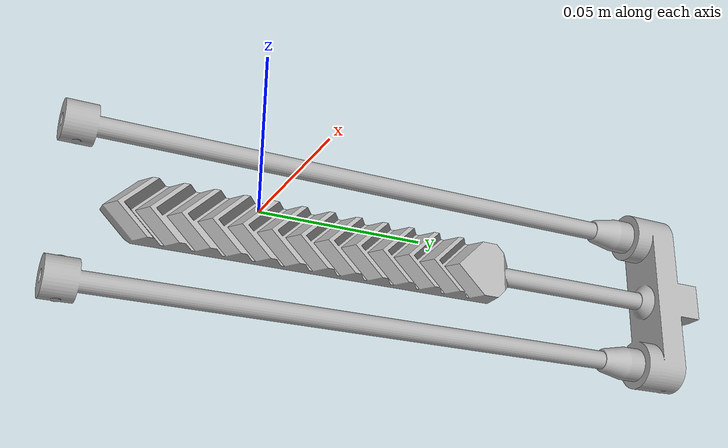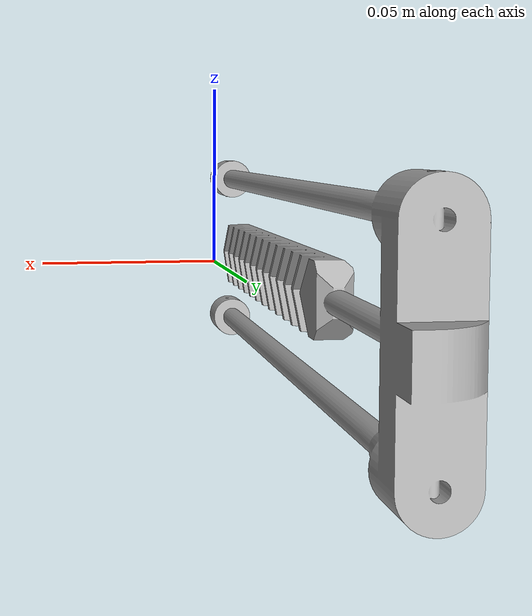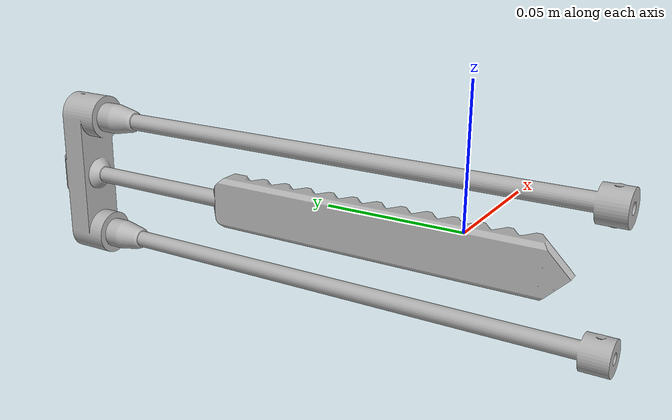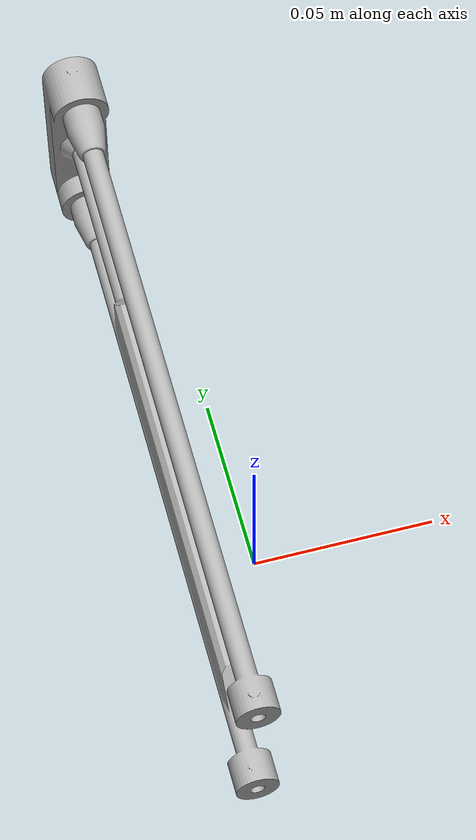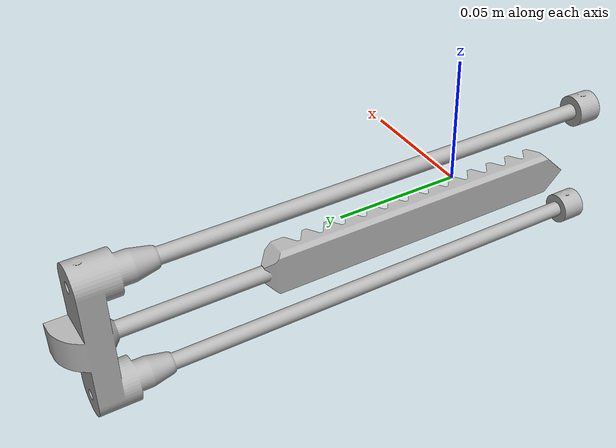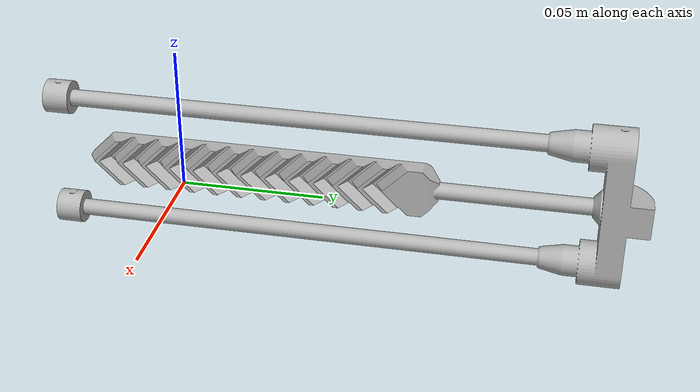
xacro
<?xml version="1.0" ?>
<robot name="jumping_robot_urdf_backup_copy" xmlns:xacro="http://www.ros.org/wiki/xacro">

<xacro:include filename="materials.xacro" />
<xacro:include filename="jumping_robot_urdf_backup_copy.trans" />
<xacro:include filename="jumping_robot_urdf_backup_copy.gazebo" />
<link name="base_link">
  <inertial>
    <origin xyz="-0.013572090010166953 0.07234958657969306 -0.0004353043410476317" rpy="0 0 0"/>
    <mass value="0.2824006607720704"/>
    <inertia ixx="0.001426" iyy="7.2e-05" izz="0.001359" ixy="-5e-06" iyz="-0.0" ixz="-0.0"/>
  </inertial>
  <visual>
    <origin xyz="0 0 0" rpy="0 0 0"/>
    <geometry>
      <mesh filename="meshes/base_link.stl" scale="0.001 0.001 0.001"/>
    </geometry>
    <material name="silver"/>
  </visual>
  <collision>
    <origin xyz="0 0 0" rpy="0 0 0"/>
    <geometry>
      <mesh filename="meshes/base_link.stl" scale="0.001 0.001 0.001"/>
    </geometry>
  </collision>
</link>

</robot>

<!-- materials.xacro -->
<robot name="jumping_robot_urdf_backup_copy" xmlns:xacro="http://www.ros.org/wiki/xacro" >

<material name="silver">
  <color rgba="0.700 0.700 0.700 1.000"/>
</material>

</robot>

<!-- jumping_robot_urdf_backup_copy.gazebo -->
<robot name="jumping_robot_urdf_backup_copy" xmlns:xacro="http://www.ros.org/wiki/xacro" >

<xacro:property name="body_color" value="Gazebo/Silver" />

<gazebo>
  <plugin name="control" filename="libgazebo_ros_control.so"/>
</gazebo>
<gazebo reference="base_link">
  <material>${body_color}</material>
  <mu1>0.2</mu1>
  <mu2>0.2</mu2>
  <selfCollide>true</selfCollide>
  <gravity>true</gravity>
</gazebo>

</robot>
